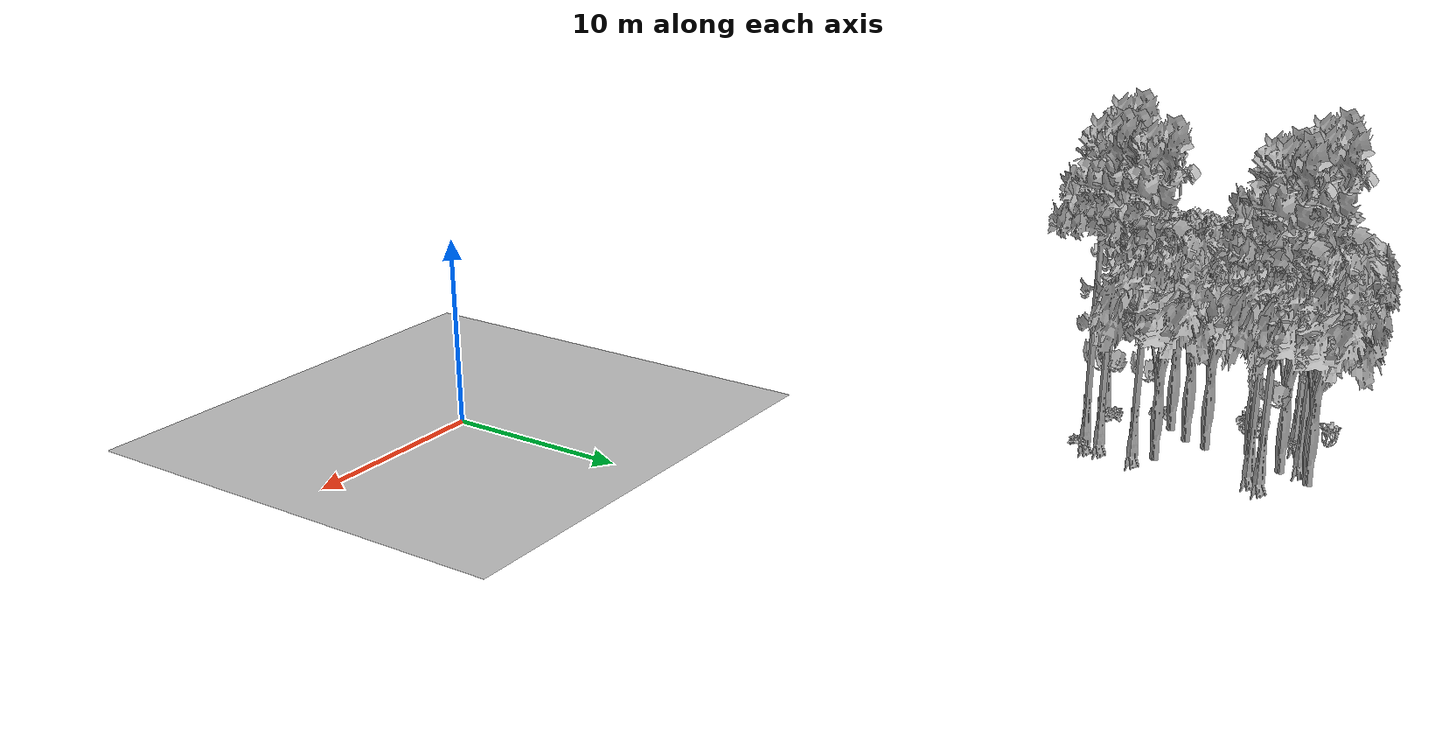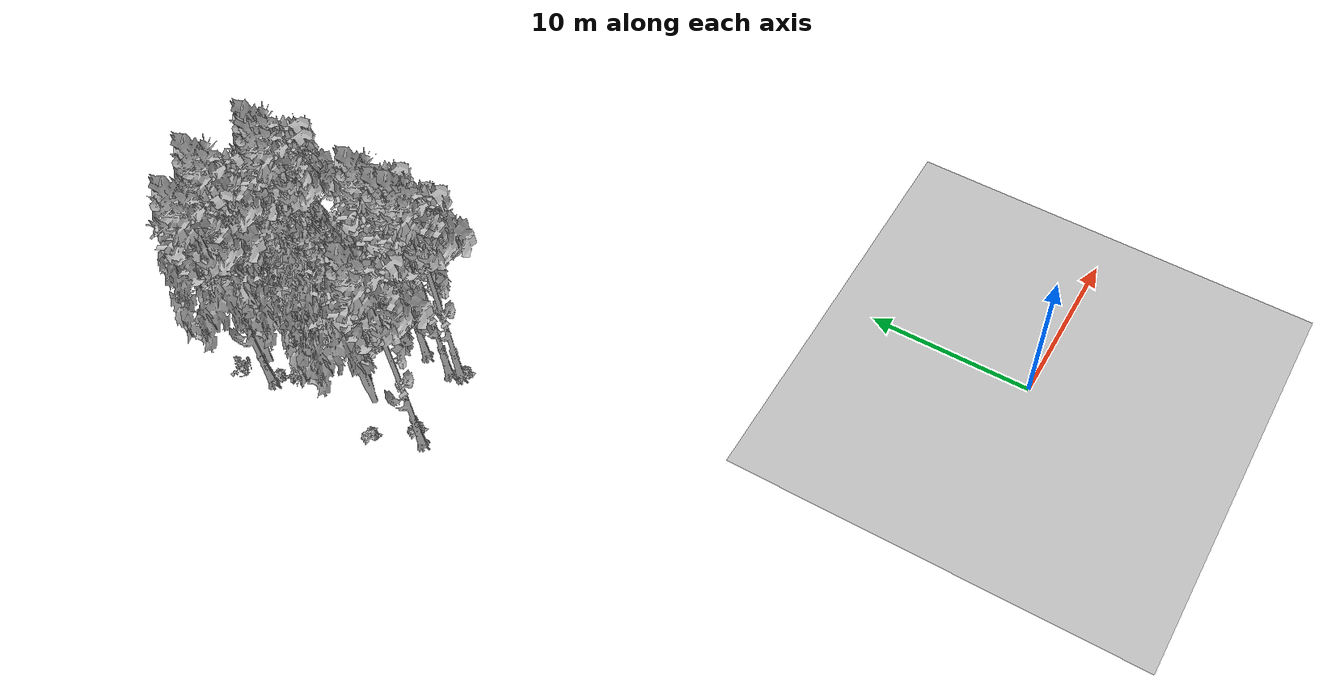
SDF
<sdf version="1.7">
 <world name="default">
  <model name="ground_plane">
   <static>1</static>
   <link name="link">
    <collision name="collision">
     <pose>-50 0 0 0 -0 0</pose>
     <geometry><plane><normal>0 0 1</normal><size>80 80</size></plane></geometry>
     <surface><contact><ode><min_depth>0.01</min_depth><max_vel>0</max_vel></ode></contact></surface>
    </collision>
    <visual name="grass">
     <cast_shadows>0</cast_shadows>
     <geometry>
      <mesh>
       <scale>0.46714285714285714 0.46714285714285714 0.1</scale>
       <uri>file://grass_plane/meshes/grass_plane.dae</uri>
      </mesh>
     </geometry>
    </visual>
   </link>
  </model>
  <model name="Tree 6">
   <static>1</static>
   <pose>-19.302507707465043 31.940459290387196 0 1.57079 -0 0</pose>
   <link name="link">
    <collision name="collision">
     <geometry><mesh><scale>3.5 5 3.5</scale><uri>model://tree_2/meshes/tree_2.obj</uri></mesh></geometry>
    </collision>
    <visual name="visual">
     <geometry><mesh><scale>3.5 5 3.5</scale><uri>model://tree_2/meshes/tree_2.obj</uri></mesh></geometry>
    </visual>
   </link>
  </model>
  <model name="Tree 85">
   <static>1</static>
   <pose>-18.363122085777725 36.33316687483587 0 1.57079 -0 0</pose>
   <link name="link">
    <collision name="collision">
     <geometry><mesh><scale>3.5 5 3.5</scale><uri>model://tree_2/meshes/tree_2.obj</uri></mesh></geometry>
    </collision>
    <visual name="visual">
     <geometry><mesh><scale>3.5 5 3.5</scale><uri>model://tree_2/meshes/tree_2.obj</uri></mesh></geometry>
    </visual>
   </link>
  </model>
  <model name="Tree 179">
   <static>1</static>
   <pose>-20.054739046151894 28.018649587510055 0 1.57079 -0 0</pose>
   <link name="link">
    <collision name="collision">
     <geometry><mesh><scale>3.5 5 3.5</scale><uri>model://tree_9/meshes/tree_9.obj</uri></mesh></geometry>
    </collision>
    <visual name="visual">
     <geometry><mesh><scale>3.5 5 3.5</scale><uri>model://tree_9/meshes/tree_9.obj</uri></mesh></geometry>
    </visual>
   </link>
  </model>
  <model name="Tree 187">
   <static>1</static>
   <pose>-15.118277918780027 31.41486546087394 0 1.57079 -0 0</pose>
   <link name="link">
    <collision name="collision">
     <geometry><mesh><scale>3.5 5 3.5</scale><uri>model://tree_9/meshes/tree_9.obj</uri></mesh></geometry>
    </collision>
    <visual name="visual">
     <geometry><mesh><scale>3.5 5 3.5</scale><uri>model://tree_9/meshes/tree_9.obj</uri></mesh></geometry>
    </visual>
   </link>
  </model>
  <model name="Tree 237">
   <static>1</static>
   <pose>-18.41126469494678 38.904988424279765 0 1.57079 -0 0</pose>
   <link name="link">
    <collision name="collision">
     <geometry><mesh><scale>3.5 5 3.5</scale><uri>model://tree_9/meshes/tree_9.obj</uri></mesh></geometry>
    </collision>
    <visual name="visual">
     <geometry><mesh><scale>3.5 5 3.5</scale><uri>model://tree_9/meshes/tree_9.obj</uri></mesh></geometry>
    </visual>
   </link>
  </model>
  <model name="Tree 281">
   <static>1</static>
   <pose>-15.521643064244234 29.488649112732375 0 1.57079 -0 0</pose>
   <link name="link">
    <collision name="collision">
     <geometry><mesh><scale>3.5 5 3.5</scale><uri>model://tree_9/meshes/tree_9.obj</uri></mesh></geometry>
    </collision>
    <visual name="visual">
     <geometry><mesh><scale>3.5 5 3.5</scale><uri>model://tree_9/meshes/tree_9.obj</uri></mesh></geometry>
    </visual>
   </link>
  </model>
  <model name="Tree 337">
   <static>1</static>
   <pose>-18.34213926911686 33.078909145944436 0 1.57079 -0 0</pose>
   <link name="link">
    <collision name="collision">
     <geometry><mesh><scale>3.5 5 3.5</scale><uri>model://tree_2/meshes/tree_2.obj</uri></mesh></geometry>
    </collision>
    <visual name="visual">
     <geometry><mesh><scale>3.5 5 3.5</scale><uri>model://tree_2/meshes/tree_2.obj</uri></mesh></geometry>
    </visual>
   </link>
  </model>
  <model name="Tree 342">
   <static>1</static>
   <pose>-16.88809337451493 39.66841275444844 0 1.57079 -0 0</pose>
   <link name="link">
    <collision name="collision">
     <geometry><mesh><scale>3.5 5 3.5</scale><uri>model://tree_2/meshes/tree_2.obj</uri></mesh></geometry>
    </collision>
    <visual name="visual">
     <geometry><mesh><scale>3.5 5 3.5</scale><uri>model://tree_2/meshes/tree_2.obj</uri></mesh></geometry>
    </visual>
   </link>
  </model>
  <model name="Tree 373">
   <static>1</static>
   <pose>-16.347001165725413 39.8587911506186 0 1.57079 -0 0</pose>
   <link name="link">
    <collision name="collision">
     <geometry><mesh><scale>3.5 5 3.5</scale><uri>model://tree_2/meshes/tree_2.obj</uri></mesh></geometry>
    </collision>
    <visual name="visual">
     <geometry><mesh><scale>3.5 5 3.5</scale><uri>model://tree_2/meshes/tree_2.obj</uri></mesh></geometry>
    </visual>
   </link>
  </model>
  <model name="Tree 375">
   <static>1</static>
   <pose>-21.016398451326136 37.94643599635576 0 1.57079 -0 0</pose>
   <link name="link">
    <collision name="collision">
     <geometry><mesh><scale>3.5 5 3.5</scale><uri>model://tree_9/meshes/tree_9.obj</uri></mesh></geometry>
    </collision>
    <visual name="visual">
     <geometry><mesh><scale>3.5 5 3.5</scale><uri>model://tree_9/meshes/tree_9.obj</uri></mesh></geometry>
    </visual>
   </link>
  </model>
  <model name="Tree 438">
   <static>1</static>
   <pose>-17.041587803101734 38.3034557788872 0 1.57079 -0 0</pose>
   <link name="link">
    <collision name="collision">
     <geometry><mesh><scale>3.5 5 3.5</scale><uri>model://tree_2/meshes/tree_2.obj</uri></mesh></geometry>
    </collision>
    <visual name="visual">
     <geometry><mesh><scale>3.5 5 3.5</scale><uri>model://tree_2/meshes/tree_2.obj</uri></mesh></geometry>
    </visual>
   </link>
  </model>
  <model name="Tree 496">
   <static>1</static>
   <pose>-15.227331592546655 37.831804265046955 0 1.57079 -0 0</pose>
   <link name="link">
    <collision name="collision">
     <geometry><mesh><scale>3.5 5 3.5</scale><uri>model://tree_9/meshes/tree_9.obj</uri></mesh></geometry>
    </collision>
    <visual name="visual">
     <geometry><mesh><scale>3.5 5 3.5</scale><uri>model://tree_9/meshes/tree_9.obj</uri></mesh></geometry>
    </visual>
   </link>
  </model>
  <model name="Tree 501">
   <static>1</static>
   <pose>-17.85655627463443 34.257594029972 0 1.57079 -0 0</pose>
   <link name="link">
    <collision name="collision">
     <geometry><mesh><scale>3.5 5 3.5</scale><uri>model://tree_2/meshes/tree_2.obj</uri></mesh></geometry>
    </collision>
    <visual name="visual">
     <geometry><mesh><scale>3.5 5 3.5</scale><uri>model://tree_2/meshes/tree_2.obj</uri></mesh></geometry>
    </visual>
   </link>
  </model>
  <model name="Tree 545">
   <static>1</static>
   <pose>-20.103322740888697 38.92164618898059 0 1.57079 -0 0</pose>
   <link name="link">
    <collision name="collision">
     <geometry><mesh><scale>3.5 5 3.5</scale><uri>model://tree_2/meshes/tree_2.obj</uri></mesh></geometry>
    </collision>
    <visual name="visual">
     <geometry><mesh><scale>3.5 5 3.5</scale><uri>model://tree_2/meshes/tree_2.obj</uri></mesh></geometry>
    </visual>
   </link>
  </model>
  <model name="Tree 547">
   <static>1</static>
   <pose>-15.251723962636458 32.519170032235095 0 1.57079 -0 0</pose>
   <link name="link">
    <collision name="collision">
     <geometry><mesh><scale>3.5 5 3.5</scale><uri>model://tree_2/meshes/tree_2.obj</uri></mesh></geometry>
    </collision>
    <visual name="visual">
     <geometry><mesh><scale>3.5 5 3.5</scale><uri>model://tree_2/meshes/tree_2.obj</uri></mesh></geometry>
    </visual>
   </link>
  </model>
  <model name="Tree 617">
   <static>1</static>
   <pose>-15.807530691927106 37.13622486128878 0 1.57079 -0 0</pose>
   <link name="link">
    <collision name="collision">
     <geometry><mesh><scale>3.5 5 3.5</scale><uri>model://tree_9/meshes/tree_9.obj</uri></mesh></geometry>
    </collision>
    <visual name="visual">
     <geometry><mesh><scale>3.5 5 3.5</scale><uri>model://tree_9/meshes/tree_9.obj</uri></mesh></geometry>
    </visual>
   </link>
  </model>
  <model name="Tree 624">
   <static>1</static>
   <pose>-15.345392987144823 28.793544341814766 0 1.57079 -0 0</pose>
   <link name="link">
    <collision name="collision">
     <geometry><mesh><scale>3.5 5 3.5</scale><uri>model://tree_9/meshes/tree_9.obj</uri></mesh></geometry>
    </collision>
    <visual name="visual">
     <geometry><mesh><scale>3.5 5 3.5</scale><uri>model://tree_9/meshes/tree_9.obj</uri></mesh></geometry>
    </visual>
   </link>
  </model>
  <model name="Bush 227">
   <static>1</static>
   <pose>-20.05297758010466 35.864569756480165 0 1.57079 -0 0</pose>
   <link name="link">
    <collision name="collision">
     <geometry><mesh><scale>2 2 2</scale><uri>model://bush_1/meshes/bush_1.obj</uri></mesh></geometry>
     <surface><contact><collide_without_contact>false</collide_without_contact></contact></surface>
    </collision>
    <visual name="visual">
     <geometry><mesh><scale>2 2 2</scale><uri>model://bush_1/meshes/bush_1.obj</uri></mesh></geometry>
    </visual>
   </link>
  </model>
  <model name="Bush 228">
   <static>1</static>
   <pose>-21.227622609024476 30.645702261947505 0 1.57079 -0 0</pose>
   <link name="link">
    <collision name="collision">
     <geometry><mesh><scale>2 2 2</scale><uri>model://bush_2/meshes/bush_2.obj</uri></mesh></geometry>
     <surface><contact><collide_without_contact>false</collide_without_contact></contact></surface>
    </collision>
    <visual name="visual">
     <geometry><mesh><scale>2 2 2</scale><uri>model://bush_2/meshes/bush_2.obj</uri></mesh></geometry>
    </visual>
   </link>
  </model>
  <model name="Bush 240">
   <static>1</static>
   <pose>-20.507974577689367 36.04992954799749 0 1.57079 -0 0</pose>
   <link name="link">
    <collision name="collision">
     <geometry><mesh><scale>2 2 2</scale><uri>model://bush_5/meshes/bush_5.obj</uri></mesh></geometry>
     <surface><contact><collide_without_contact>false</collide_without_contact></contact></surface>
    </collision>
    <visual name="visual">
     <geometry><mesh><scale>2 2 2</scale><uri>model://bush_5/meshes/bush_5.obj</uri></mesh></geometry>
    </visual>
   </link>
  </model>
  <model name="Bush 343">
   <static>1</static>
   <pose>-15.265043247595884 28.511529273441596 0 1.57079 -0 0</pose>
   <link name="link">
    <collision name="collision">
     <geometry><mesh><scale>2 2 2</scale><uri>model://bush_2/meshes/bush_2.obj</uri></mesh></geometry>
     <surface><contact><collide_without_contact>false</collide_without_contact></contact></surface>
    </collision>
    <visual name="visual">
     <geometry><mesh><scale>2 2 2</scale><uri>model://bush_2/meshes/bush_2.obj</uri></mesh></geometry>
    </visual>
   </link>
  </model>
  <model name="Bush 385">
   <static>1</static>
   <pose>-21.459614030903904 39.456944115022054 0 1.57079 -0 0</pose>
   <link name="link">
    <collision name="collision">
     <geometry><mesh><scale>2 2 2</scale><uri>model://bush_4/meshes/bush_4.obj</uri></mesh></geometry>
     <surface><contact><collide_without_contact>false</collide_without_contact></contact></surface>
    </collision>
    <visual name="visual">
     <geometry><mesh><scale>2 2 2</scale><uri>model://bush_4/meshes/bush_4.obj</uri></mesh></geometry>
    </visual>
   </link>
  </model>
  <model name="Bush 505">
   <static>1</static>
   <pose>-20.759855430804144 37.6626142381904 0 1.57079 -0 0</pose>
   <link name="link">
    <collision name="collision">
     <geometry><mesh><scale>2 2 2</scale><uri>model://bush_2/meshes/bush_2.obj</uri></mesh></geometry>
     <surface><contact><collide_without_contact>false</collide_without_contact></contact></surface>
    </collision>
    <visual name="visual">
     <geometry><mesh><scale>2 2 2</scale><uri>model://bush_2/meshes/bush_2.obj</uri></mesh></geometry>
    </visual>
   </link>
  </model>
  <model name="Bush 597">
   <static>1</static>
   <pose>-19.643837457896208 28.65150495985833 0 1.57079 -0 0</pose>
   <link name="link">
    <collision name="collision">
     <geometry><mesh><scale>2 2 2</scale><uri>model://bush_2/meshes/bush_2.obj</uri></mesh></geometry>
     <surface><contact><collide_without_contact>false</collide_without_contact></contact></surface>
    </collision>
    <visual name="visual">
     <geometry><mesh><scale>2 2 2</scale><uri>model://bush_2/meshes/bush_2.obj</uri></mesh></geometry>
    </visual>
   </link>
  </model>
 </world>
</sdf>
